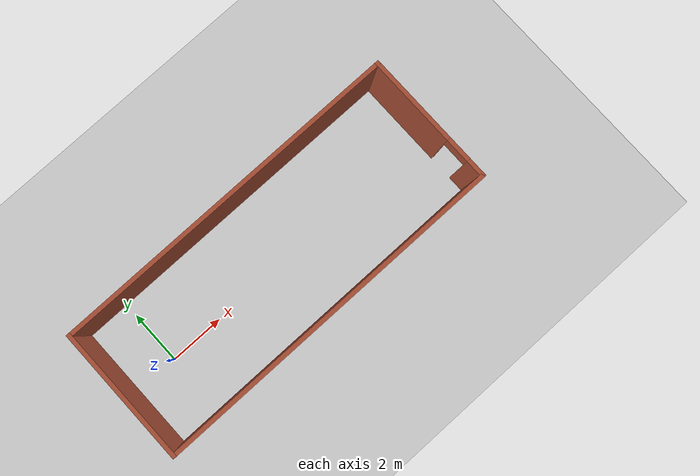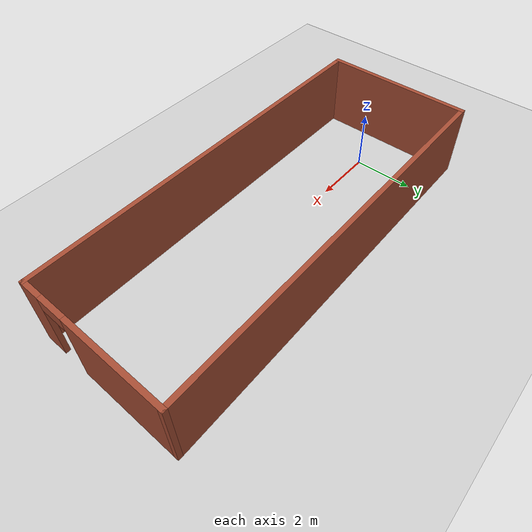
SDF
<sdf version="1.6">
 <world name="default">
  <light name="sun" type="directional">
   <pose>0 0 10 0 -0 0</pose>
   <diffuse>0.8 0.8 0.8 1</diffuse>
   <specular>0.2 0.2 0.2 1</specular>
   <attenuation>
    <range>1000</range>
    <constant>0.9</constant>
    <linear>0.01</linear>
    <quadratic>0.001</quadratic>
   </attenuation>
   <direction>-0.5 0.1 -0.9</direction>
  </light>
  <model name="ground_plane">
   <static>1</static>
   <link name="link">
    <collision name="collision">
     <geometry><plane><normal>0 0 1</normal><size>100 100</size></plane></geometry>
     <surface>
      <contact><collide_bitmask>65535</collide_bitmask></contact>
      <friction><ode><mu>100</mu><mu2>50</mu2></ode></friction>
     </surface>
    </collision>
    <visual name="visual">
     <cast_shadows>0</cast_shadows>
     <geometry><plane><normal>0 0 1</normal><size>100 100</size></plane></geometry>
     <material>
      <script><uri>file://media/materials/scripts/gazebo.material</uri><name>Gazebo/Grey</name></script>
     </material>
    </visual>
   </link>
  </model>
  <gravity>0 0 -9.8</gravity>
  <magnetic_field>6e-06 2.3e-05 -4.2e-05</magnetic_field>
  <atmosphere type="adiabatic"/>
  <physics name="default_physics" default="0" type="ode">
   <max_step_size>0.001</max_step_size>
   <real_time_factor>1</real_time_factor>
   <real_time_update_rate>1000</real_time_update_rate>
  </physics>
  <scene><ambient>0.4 0.4 0.4 1</ambient><background>0.7 0.7 0.7 1</background><shadows>1</shadows></scene>
  <audio><device>default</device></audio>
  <spherical_coordinates>
   <surface_model>EARTH_WGS84</surface_model>
   <latitude_deg>0</latitude_deg>
   <longitude_deg>0</longitude_deg>
   <elevation>0</elevation>
   <heading_deg>0</heading_deg>
  </spherical_coordinates>
  <model name="LargeRoom">
   <pose>4.78804 0.116664 0 0 -0 0</pose>
   <link name="Wall_0">
    <collision name="Wall_0_Collision">
     <geometry><box><size>5 0.15 2.5</size></box></geometry>
     <pose>0 0 1.25 0 -0 0</pose>
    </collision>
    <visual name="Wall_0_Visual">
     <pose>0 0 1.25 0 -0 0</pose>
     <geometry><box><size>5 0.15 2.5</size></box></geometry>
     <material>
      <script><uri>file://media/materials/scripts/gazebo.material</uri><name>Gazebo/Bricks</name></script>
      <ambient>1 1 1 1</ambient>
     </material>
     <meta><layer>0</layer></meta>
    </visual>
    <pose>-6.425 0 0 0 -0 -1.5708</pose>
   </link>
   <link name="Wall_1">
    <collision name="Wall_1_Collision">
     <geometry><box><size>13 0.15 2.5</size></box></geometry>
     <pose>0 0 1.25 0 -0 0</pose>
    </collision>
    <visual name="Wall_1_Visual">
     <pose>0 0 1.25 0 -0 0</pose>
     <geometry><box><size>13 0.15 2.5</size></box></geometry>
     <material>
      <script><uri>file://media/materials/scripts/gazebo.material</uri><name>Gazebo/Bricks</name></script>
      <ambient>1 1 1 1</ambient>
     </material>
     <meta><layer>0</layer></meta>
    </visual>
    <pose>-0 -2.425 0 0 -0 0</pose>
   </link>
   <link name="Wall_2">
    <pose>6.425 0 0 0 -0 1.5708</pose>
    <visual name="Wall_2_Visual_0">
     <pose>-2.1325 0 1.25 0 -0 0</pose>
     <geometry><box><size>0.735 0.15 2.5</size></box></geometry>
     <material>
      <script><uri>file://media/materials/scripts/gazebo.material</uri><name>Gazebo/Bricks</name></script>
      <ambient>1 1 1 1</ambient>
     </material>
     <meta><layer>0</layer></meta>
    </visual>
    <collision name="Wall_2_Collision_0">
     <geometry><box><size>0.735 0.15 2.5</size></box></geometry>
     <pose>-2.1325 0 1.25 0 -0 0</pose>
    </collision>
    <visual name="Wall_2_Visual_1">
     <pose>0.8175 0 1.25 0 -0 0</pose>
     <geometry><box><size>3.365 0.15 2.5</size></box></geometry>
     <material>
      <script><uri>file://media/materials/scripts/gazebo.material</uri><name>Gazebo/Bricks</name></script>
      <ambient>1 1 1 1</ambient>
     </material>
     <meta><layer>0</layer></meta>
    </visual>
    <collision name="Wall_2_Collision_1">
     <geometry><box><size>3.365 0.15 2.5</size></box></geometry>
     <pose>0.8175 0 1.25 0 -0 0</pose>
    </collision>
    <visual name="Wall_2_Visual_2">
     <pose>-1.315 0 2.25 0 -0 0</pose>
     <geometry><box><size>0.9 0.15 0.5</size></box></geometry>
     <material>
      <script><uri>file://media/materials/scripts/gazebo.material</uri><name>Gazebo/Bricks</name></script>
      <ambient>1 1 1 1</ambient>
     </material>
     <meta><layer>0</layer></meta>
    </visual>
    <collision name="Wall_2_Collision_2">
     <geometry><box><size>0.9 0.15 0.5</size></box></geometry>
     <pose>-1.315 0 2.25 0 -0 0</pose>
    </collision>
   </link>
   <link name="Wall_3">
    <collision name="Wall_3_Collision">
     <geometry><box><size>13 0.15 2.5</size></box></geometry>
     <pose>0 0 1.25 0 -0 0</pose>
    </collision>
    <visual name="Wall_3_Visual">
     <pose>0 0 1.25 0 -0 0</pose>
     <geometry><box><size>13 0.15 2.5</size></box></geometry>
     <material>
      <script><uri>file://media/materials/scripts/gazebo.material</uri><name>Gazebo/Bricks</name></script>
      <ambient>1 1 1 1</ambient>
     </material>
     <meta><layer>0</layer></meta>
    </visual>
    <pose>-0 2.425 0 0 -0 3.14159</pose>
   </link>
   <static>1</static>
  </model>
 </world>
</sdf>
